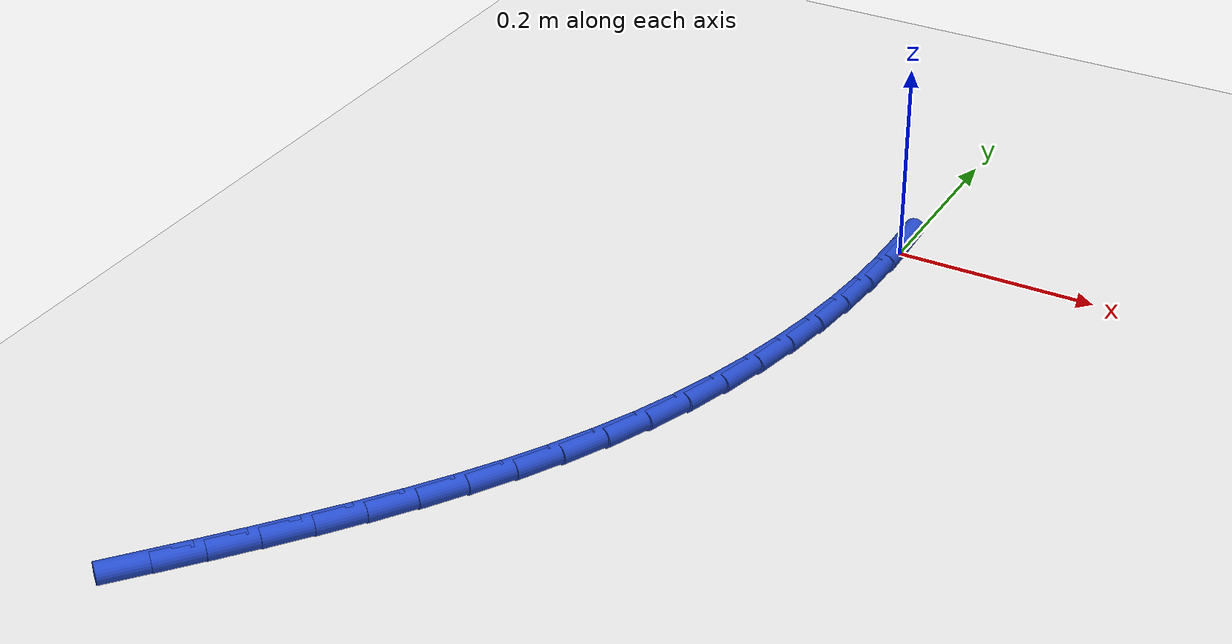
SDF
<sdf version="1.6">
 <world name="default">
  <model name="ground_plane">
   <static>1</static>
   <link name="link">
    <collision name="collision">
     <geometry><plane><normal>0 0 1</normal><size>100 100</size></plane></geometry>
     <surface><friction><ode><mu>100</mu><mu2>50</mu2></ode></friction></surface>
    </collision>
    <visual name="visual">
     <cast_shadows>0</cast_shadows>
     <geometry><plane><normal>0 0 1</normal><size>100 100</size></plane></geometry>
     <material>
      <script><uri>file://media/materials/scripts/gazebo.material</uri><name>Gazebo/WhiteGlow</name></script>
     </material>
    </visual>
   </link>
  </model>
  <model name="line">
   <link name="link_0">
    <pose>-2.2551405187698492e-17 -1.3877787807814457e-17 0.01 0 1.57 -1.5382861405999835</pose>
    <collision name="collision">
     <geometry><cylinder><radius>0.01</radius><length>0.08</length></cylinder></geometry>
    </collision>
    <visual name="visual">
     <material>
      <script><name>Gazebo/Blue</name><uri>file://media/materials/scripts/gazebo.material</uri></script>
     </material>
     <geometry><cylinder><radius>0.01</radius><length>0.08</length></cylinder></geometry>
    </visual>
   </link>
   <link name="link_141">
    <pose>-0.3312280376596758 -0.751916739699873 0.01 0 1.57 0.8610174294085028</pose>
    <collision name="collision">
     <geometry><cylinder><radius>0.01</radius><length>0.08</length></cylinder></geometry>
    </collision>
    <visual name="visual">
     <material>
      <script><name>Gazebo/Blue</name><uri>file://media/materials/scripts/gazebo.material</uri></script>
     </material>
     <geometry><cylinder><radius>0.01</radius><length>0.08</length></cylinder></geometry>
    </visual>
   </link>
   <link name="link_142">
    <pose>-0.3025082481779576 -0.7184883739357442 0.01 0 1.57 0.8732910161966062</pose>
    <collision name="collision">
     <geometry><cylinder><radius>0.01</radius><length>0.08</length></cylinder></geometry>
    </collision>
    <visual name="visual">
     <material>
      <script><name>Gazebo/Blue</name><uri>file://media/materials/scripts/gazebo.material</uri></script>
     </material>
     <geometry><cylinder><radius>0.01</radius><length>0.08</length></cylinder></geometry>
    </visual>
   </link>
   <link name="link_143">
    <pose>-0.27409582821384726 -0.6845846638886924 0.01 0 1.57 0.8875497841890222</pose>
    <collision name="collision">
     <geometry><cylinder><radius>0.01</radius><length>0.08</length></cylinder></geometry>
    </collision>
    <visual name="visual">
     <material>
      <script><name>Gazebo/Blue</name><uri>file://media/materials/scripts/gazebo.material</uri></script>
     </material>
     <geometry><cylinder><radius>0.01</radius><length>0.08</length></cylinder></geometry>
    </visual>
   </link>
   <link name="link_144">
    <pose>-0.2460886571424073 -0.6501797257394085 0.01 0 1.57 0.9063958509033393</pose>
    <collision name="collision">
     <geometry><cylinder><radius>0.01</radius><length>0.08</length></cylinder></geometry>
    </collision>
    <visual name="visual">
     <material>
      <script><name>Gazebo/Blue</name><uri>file://media/materials/scripts/gazebo.material</uri></script>
     </material>
     <geometry><cylinder><radius>0.01</radius><length>0.08</length></cylinder></geometry>
    </visual>
   </link>
   <link name="link_145">
    <pose>-0.21869709281128155 -0.615204932984167 0.01 0 1.57 0.9299390979532091</pose>
    <collision name="collision">
     <geometry><cylinder><radius>0.01</radius><length>0.08</length></cylinder></geometry>
    </collision>
    <visual name="visual">
     <material>
      <script><name>Gazebo/Blue</name><uri>file://media/materials/scripts/gazebo.material</uri></script>
     </material>
     <geometry><cylinder><radius>0.01</radius><length>0.08</length></cylinder></geometry>
    </visual>
   </link>
   <link name="link_146">
    <pose>-0.19213342085247048 -0.5795909265463627 0.01 0 1.57 0.958267628164679</pose>
    <collision name="collision">
     <geometry><cylinder><radius>0.01</radius><length>0.08</length></cylinder></geometry>
    </collision>
    <visual name="visual">
     <material>
      <script><name>Gazebo/Blue</name><uri>file://media/materials/scripts/gazebo.material</uri></script>
     </material>
     <geometry><cylinder><radius>0.01</radius><length>0.08</length></cylinder></geometry>
    </visual>
   </link>
   <link name="link_147">
    <pose>-0.16660992689797605 -0.5432683473493933 0.01 0 1.57 0.9914765625082003</pose>
    <collision name="collision">
     <geometry><cylinder><radius>0.01</radius><length>0.08</length></cylinder></geometry>
    </collision>
    <visual name="visual">
     <material>
      <script><name>Gazebo/Blue</name><uri>file://media/materials/scripts/gazebo.material</uri></script>
     </material>
     <geometry><cylinder><radius>0.01</radius><length>0.08</length></cylinder></geometry>
    </visual>
   </link>
   <link name="link_148">
    <pose>-0.1423388965797988 -0.5061678363166541 0.01 0 1.57 1.0296485923116838</pose>
    <collision name="collision">
     <geometry><cylinder><radius>0.01</radius><length>0.08</length></cylinder></geometry>
    </collision>
    <visual name="visual">
     <material>
      <script><name>Gazebo/Blue</name><uri>file://media/materials/scripts/gazebo.material</uri></script>
     </material>
     <geometry><cylinder><radius>0.01</radius><length>0.08</length></cylinder></geometry>
    </visual>
   </link>
   <link name="link_149">
    <pose>-0.11953261552993968 -0.46822003437154086 0.01 0 1.57 1.0728297691738329</pose>
    <collision name="collision">
     <geometry><cylinder><radius>0.01</radius><length>0.08</length></cylinder></geometry>
    </collision>
    <visual name="visual">
     <material>
      <script><name>Gazebo/Blue</name><uri>file://media/materials/scripts/gazebo.material</uri></script>
     </material>
     <geometry><cylinder><radius>0.01</radius><length>0.08</length></cylinder></geometry>
    </visual>
   </link>
   <link name="link_150">
    <pose>-0.09840336938039967 -0.4293555824374497 0.01 0 1.57 1.121000651901372</pose>
    <collision name="collision">
     <geometry><cylinder><radius>0.01</radius><length>0.08</length></cylinder></geometry>
    </collision>
    <visual name="visual">
     <material>
      <script><name>Gazebo/Blue</name><uri>file://media/materials/scripts/gazebo.material</uri></script>
     </material>
     <geometry><cylinder><radius>0.01</radius><length>0.08</length></cylinder></geometry>
    </visual>
   </link>
   <link name="link_151">
    <pose>-0.07916344376317942 -0.38950512143777555 0.01 0 1.57 1.1734105361796496</pose>
    <collision name="collision">
     <geometry><cylinder><radius>0.01</radius><length>0.08</length></cylinder></geometry>
    </collision>
    <visual name="visual">
     <material>
      <script><name>Gazebo/Blue</name><uri>file://media/materials/scripts/gazebo.material</uri></script>
     </material>
     <geometry><cylinder><radius>0.01</radius><length>0.08</length></cylinder></geometry>
    </visual>
   </link>
   <link name="link_152">
    <pose>-0.06200339073079094 -0.3486201190257539 0.01 0 1.57 1.2257350491103267</pose>
    <collision name="collision">
     <geometry><cylinder><radius>0.01</radius><length>0.08</length></cylinder></geometry>
    </collision>
    <visual name="visual">
     <material>
      <script><name>Gazebo/Blue</name><uri>file://media/materials/scripts/gazebo.material</uri></script>
     </material>
     <geometry><cylinder><radius>0.01</radius><length>0.08</length></cylinder></geometry>
    </visual>
   </link>
   <link name="link_153">
    <pose>-0.04696838644633303 -0.30679135282770154 0.01 0 1.57 1.276392715803545</pose>
    <collision name="collision">
     <geometry><cylinder><radius>0.01</radius><length>0.08</length></cylinder></geometry>
    </collision>
    <visual name="visual">
     <material>
      <script><name>Gazebo/Blue</name><uri>file://media/materials/scripts/gazebo.material</uri></script>
     </material>
     <geometry><cylinder><radius>0.01</radius><length>0.08</length></cylinder></geometry>
    </visual>
   </link>
   <link name="link_154">
    <pose>-0.0340439717781502 -0.26416674743798335 0.01 0 1.57 1.325591933442579</pose>
    <collision name="collision">
     <geometry><cylinder><radius>0.01</radius><length>0.08</length></cylinder></geometry>
    </collision>
    <visual name="visual">
     <material>
      <script><name>Gazebo/Blue</name><uri>file://media/materials/scripts/gazebo.material</uri></script>
     </material>
     <geometry><cylinder><radius>0.01</radius><length>0.08</length></cylinder></geometry>
    </visual>
   </link>
   <link name="link_155">
    <pose>-0.023215506267120517 -0.22089440121240847 0.01 0 1.57 1.3735598333373662</pose>
    <collision name="collision">
     <geometry><cylinder><radius>0.01</radius><length>0.08</length></cylinder></geometry>
    </collision>
    <visual name="visual">
     <material>
      <script><name>Gazebo/Blue</name><uri>file://media/materials/scripts/gazebo.material</uri></script>
     </material>
     <geometry><cylinder><radius>0.01</radius><length>0.08</length></cylinder></geometry>
    </visual>
   </link>
   <link name="link_156">
    <pose>-0.014468349454121862 -0.17712241250678526 0.01 0 1.57 1.420533353623901</pose>
    <collision name="collision">
     <geometry><cylinder><radius>0.01</radius><length>0.08</length></cylinder></geometry>
    </collision>
    <visual name="visual">
     <material>
      <script><name>Gazebo/Blue</name><uri>file://media/materials/scripts/gazebo.material</uri></script>
     </material>
     <geometry><cylinder><radius>0.01</radius><length>0.08</length></cylinder></geometry>
    </visual>
   </link>
   <link name="link_157">
    <pose>-0.00778786088003256 -0.13299887967692414 0.01 0 1.57 1.4667570010684414</pose>
    <collision name="collision">
     <geometry><cylinder><radius>0.01</radius><length>0.08</length></cylinder></geometry>
    </collision>
    <visual name="visual">
     <material>
      <script><name>Gazebo/Blue</name><uri>file://media/materials/scripts/gazebo.material</uri></script>
     </material>
     <geometry><cylinder><radius>0.01</radius><length>0.08</length></cylinder></geometry>
    </visual>
   </link>
   <link name="link_158">
    <pose>-0.0031594000857304615 -0.08867190107863347 0.01 0 1.57 1.5124817682165064</pose>
    <collision name="collision">
     <geometry><cylinder><radius>0.01</radius><length>0.08</length></cylinder></geometry>
    </collision>
    <visual name="visual">
     <material>
      <script><name>Gazebo/Blue</name><uri>file://media/materials/scripts/gazebo.material</uri></script>
     </material>
     <geometry><cylinder><radius>0.01</radius><length>0.08</length></cylinder></geometry>
    </visual>
   </link>
   <link name="link_159">
    <pose>-0.0005683266120936068 -0.0442895750677224 0.01 0 1.57 1.5579649681646845</pose>
    <collision name="collision">
     <geometry><cylinder><radius>0.01</radius><length>0.08</length></cylinder></geometry>
    </collision>
    <visual name="visual">
     <material>
      <script><name>Gazebo/Blue</name><uri>file://media/materials/scripts/gazebo.material</uri></script>
     </material>
     <geometry><cylinder><radius>0.01</radius><length>0.08</length></cylinder></geometry>
    </visual>
   </link>
  </model>
 </world>
</sdf>
